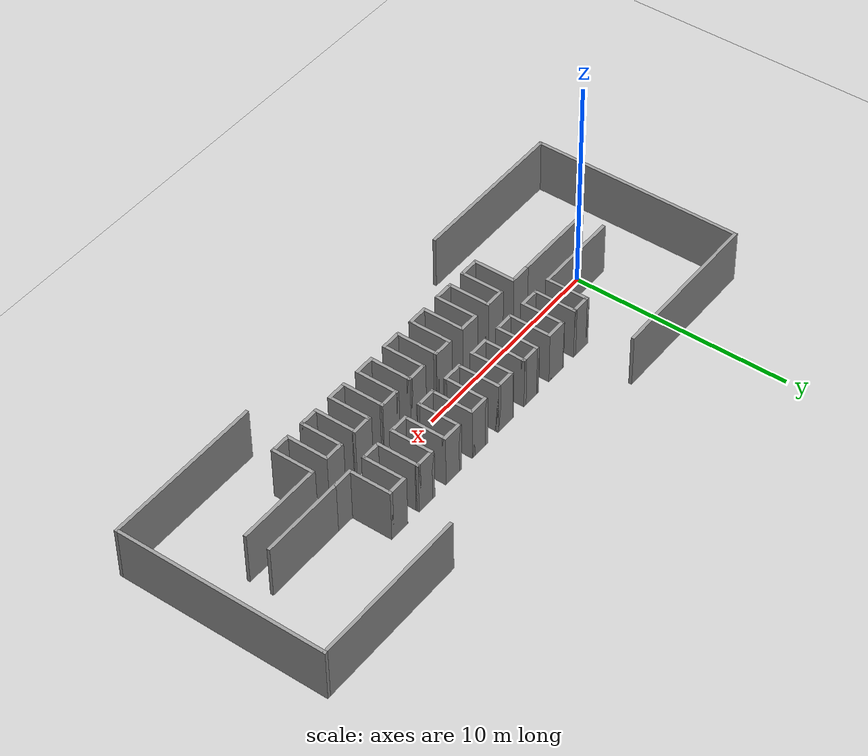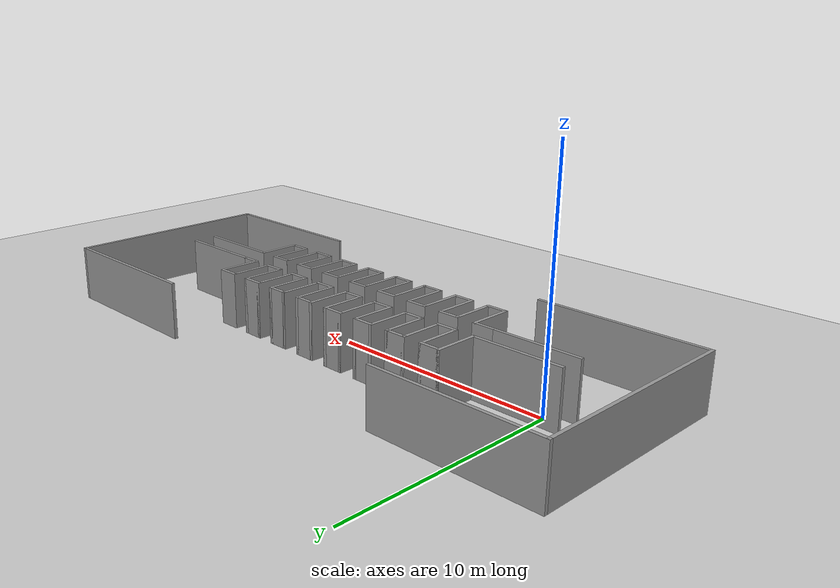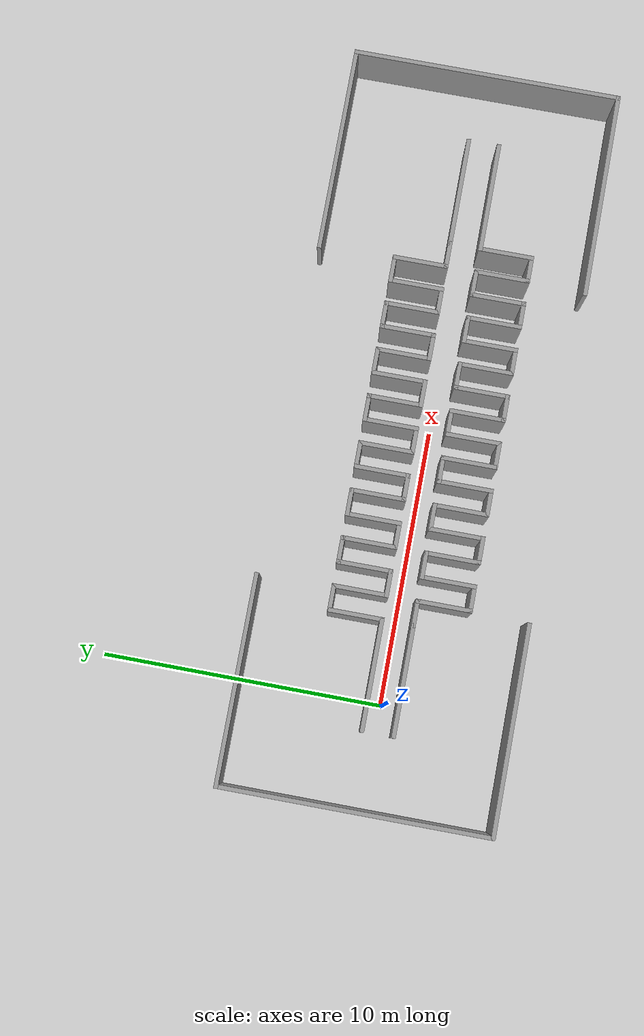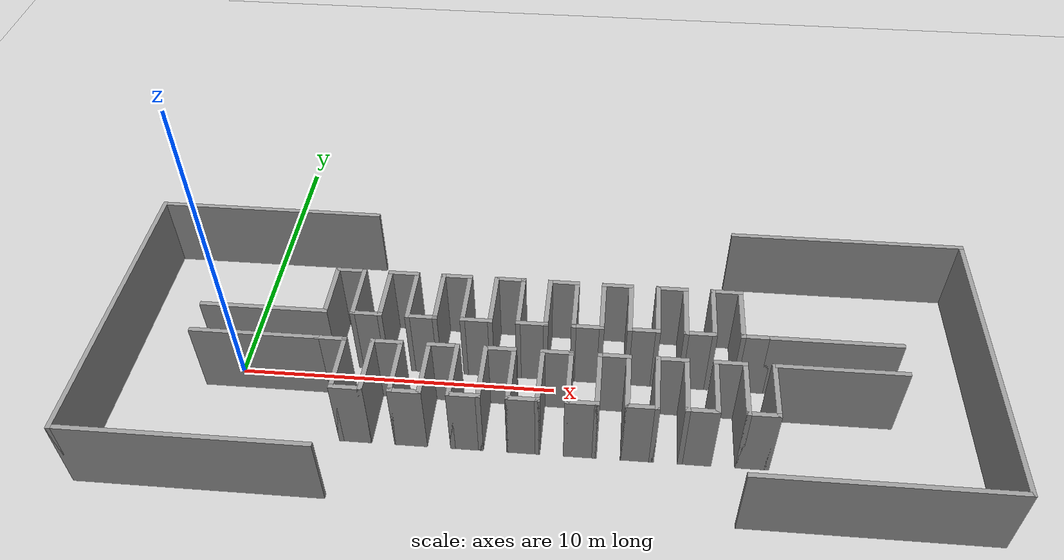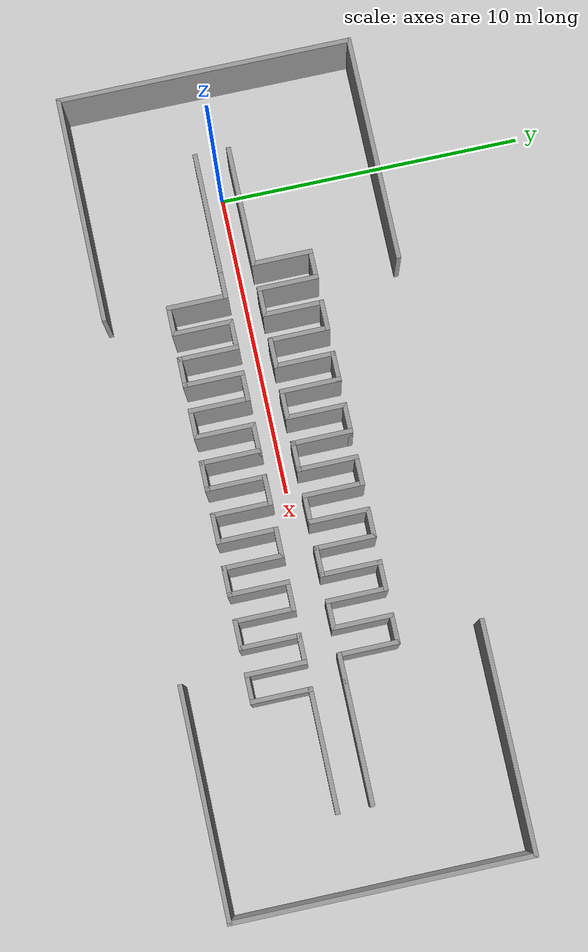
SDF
<sdf version="1.6">
 <world name="default">
  <light name="sun" type="directional">
   <pose>0 0 10 0 -0 0</pose>
   <diffuse>0.8 0.8 0.8 1</diffuse>
   <specular>0.1 0.1 0.1 1</specular>
   <attenuation>
    <range>1000</range>
    <constant>0.9</constant>
    <linear>0.01</linear>
    <quadratic>0.001</quadratic>
   </attenuation>
   <direction>-0.5 0.5 -1</direction>
  </light>
  <model name="ground_plane">
   <static>1</static>
   <link name="link">
    <collision name="collision">
     <geometry><plane><normal>0 0 1</normal><size>100 100</size></plane></geometry>
     <surface><friction><ode><mu>100</mu><mu2>50</mu2></ode></friction></surface>
    </collision>
    <visual name="visual">
     <cast_shadows>0</cast_shadows>
     <geometry><plane><normal>0 0 1</normal><size>100 100</size></plane></geometry>
     <material>
      <script><uri>file://media/materials/scripts/gazebo.material</uri><name>Gazebo/Grey</name></script>
     </material>
    </visual>
   </link>
  </model>
  <gravity>0 0 -9.8</gravity>
  <magnetic_field>6e-06 2.3e-05 -4.2e-05</magnetic_field>
  <atmosphere type="adiabatic"/>
  <physics name="default_physics" default="0" type="ode">
   <max_step_size>0.001</max_step_size>
   <real_time_factor>1</real_time_factor>
   <real_time_update_rate>1000</real_time_update_rate>
  </physics>
  <scene><ambient>0.4 0.4 0.4 1</ambient><background>0.7 0.7 0.7 1</background><shadows>1</shadows></scene>
  <spherical_coordinates>
   <surface_model>EARTH_WGS84</surface_model>
   <latitude_deg>0</latitude_deg>
   <longitude_deg>0</longitude_deg>
   <elevation>0</elevation>
   <heading_deg>0</heading_deg>
  </spherical_coordinates>
  <model name="teeth_1_0">
   <pose>9.60081 0.278234 0 0 -0 0</pose>
   <link name="Wall_112">
    <collision name="Wall_112_Collision">
     <geometry><box><size>9.75 0.15 2.5</size></box></geometry>
     <pose>0 0 1.25 0 -0 0</pose>
    </collision>
    <visual name="Wall_112_Visual">
     <pose>0 0 1.25 0 -0 0</pose>
     <geometry><box><size>9.75 0.15 2.5</size></box></geometry>
     <material>
      <script><uri>file://media/materials/scripts/gazebo.material</uri><name>Gazebo/Grey</name></script>
      <ambient>1 1 1 1</ambient>
     </material>
    </visual>
    <pose>13.3148 0 0 0 0 -1.5708</pose>
   </link>
   <link name="Wall_117">
    <collision name="Wall_117_Collision">
     <geometry><box><size>7.5 0.15 2.5</size></box></geometry>
     <pose>0 0 1.25 0 -0 0</pose>
    </collision>
    <visual name="Wall_117_Visual">
     <pose>0 0 1.25 0 -0 0</pose>
     <geometry><box><size>7.5 0.15 2.5</size></box></geometry>
     <material>
      <script><uri>file://media/materials/scripts/gazebo.material</uri><name>Gazebo/Grey</name></script>
      <ambient>1 1 1 1</ambient>
     </material>
    </visual>
    <pose>9.63981 4.8 0 0 -0 3.14159</pose>
   </link>
   <link name="Wall_120">
    <collision name="Wall_120_Collision">
     <geometry><box><size>7.5 0.15 2.5</size></box></geometry>
     <pose>0 0 1.25 0 -0 0</pose>
    </collision>
    <visual name="Wall_120_Visual">
     <pose>0 0 1.25 0 -0 0</pose>
     <geometry><box><size>7.5 0.15 2.5</size></box></geometry>
     <material>
      <script><uri>file://media/materials/scripts/gazebo.material</uri><name>Gazebo/Grey</name></script>
      <ambient>1 1 1 1</ambient>
     </material>
    </visual>
    <pose>9.63981 -4.8 0 0 -0 3.14159</pose>
   </link>
   <link name="Wall_14">
    <collision name="Wall_14_Collision">
     <geometry><box><size>2 0.15 2.5</size></box></geometry>
     <pose>0 0 1.25 0 -0 0</pose>
    </collision>
    <visual name="Wall_14_Visual">
     <pose>0 0 1.25 0 -0 0</pose>
     <geometry><box><size>2 0.15 2.5</size></box></geometry>
     <material>
      <script><uri>file://media/materials/scripts/gazebo.material</uri><name>Gazebo/Grey</name></script>
      <ambient>1 1 1 1</ambient>
     </material>
    </visual>
    <pose>-5.85552 -1.79091 0 0 0 -1.5708</pose>
   </link>
   <link name="Wall_15">
    <collision name="Wall_15_Collision">
     <geometry><box><size>1 0.15 2.5</size></box></geometry>
     <pose>0 0 1.25 0 -0 0</pose>
    </collision>
    <visual name="Wall_15_Visual">
     <pose>0 0 1.25 0 -0 0</pose>
     <geometry><box><size>1 0.15 2.5</size></box></geometry>
     <material>
      <script><uri>file://media/materials/scripts/gazebo.material</uri><name>Gazebo/Grey</name></script>
      <ambient>1 1 1 1</ambient>
     </material>
    </visual>
    <pose>-5.43052 -2.71591 0 0 -0 0</pose>
   </link>
   <link name="Wall_16">
    <collision name="Wall_16_Collision">
     <geometry><box><size>2 0.15 2.5</size></box></geometry>
     <pose>0 0 1.25 0 -0 0</pose>
    </collision>
    <visual name="Wall_16_Visual">
     <pose>0 0 1.25 0 -0 0</pose>
     <geometry><box><size>2 0.15 2.5</size></box></geometry>
     <material>
      <script><uri>file://media/materials/scripts/gazebo.material</uri><name>Gazebo/Grey</name></script>
      <ambient>1 1 1 1</ambient>
     </material>
    </visual>
    <pose>-5.00552 -1.79091 0 0 -0 1.5708</pose>
   </link>
   <link name="Wall_17">
    <collision name="Wall_17_Collision">
     <geometry><box><size>1 0.15 2.5</size></box></geometry>
     <pose>0 0 1.25 0 -0 0</pose>
    </collision>
    <visual name="Wall_17_Visual">
     <pose>0 0 1.25 0 -0 0</pose>
     <geometry><box><size>1 0.15 2.5</size></box></geometry>
     <material>
      <script><uri>file://media/materials/scripts/gazebo.material</uri><name>Gazebo/Grey</name></script>
      <ambient>1 1 1 1</ambient>
     </material>
    </visual>
    <pose>-4.58052 -0.865907 0 0 -0 0</pose>
   </link>
   <link name="Wall_18">
    <collision name="Wall_18_Collision">
     <geometry><box><size>2 0.15 2.5</size></box></geometry>
     <pose>0 0 1.25 0 -0 0</pose>
    </collision>
    <visual name="Wall_18_Visual">
     <pose>0 0 1.25 0 -0 0</pose>
     <geometry><box><size>2 0.15 2.5</size></box></geometry>
     <material>
      <script><uri>file://media/materials/scripts/gazebo.material</uri><name>Gazebo/Grey</name></script>
      <ambient>1 1 1 1</ambient>
     </material>
    </visual>
    <pose>-4.15552 -1.79091 0 0 0 -1.5708</pose>
   </link>
   <link name="Wall_19">
    <collision name="Wall_19_Collision">
     <geometry><box><size>1 0.15 2.5</size></box></geometry>
     <pose>0 0 1.25 0 -0 0</pose>
    </collision>
    <visual name="Wall_19_Visual">
     <pose>0 0 1.25 0 -0 0</pose>
     <geometry><box><size>1 0.15 2.5</size></box></geometry>
     <material>
      <script><uri>file://media/materials/scripts/gazebo.material</uri><name>Gazebo/Grey</name></script>
      <ambient>1 1 1 1</ambient>
     </material>
    </visual>
    <pose>-3.73052 -2.71591 0 0 -0 0</pose>
   </link>
   <link name="Wall_20">
    <collision name="Wall_20_Collision">
     <geometry><box><size>2 0.15 2.5</size></box></geometry>
     <pose>0 0 1.25 0 -0 0</pose>
    </collision>
    <visual name="Wall_20_Visual">
     <pose>0 0 1.25 0 -0 0</pose>
     <geometry><box><size>2 0.15 2.5</size></box></geometry>
     <material>
      <script><uri>file://media/materials/scripts/gazebo.material</uri><name>Gazebo/Grey</name></script>
      <ambient>1 1 1 1</ambient>
     </material>
    </visual>
    <pose>-3.30552 -1.79091 0 0 -0 1.5708</pose>
   </link>
   <link name="Wall_21">
    <collision name="Wall_21_Collision">
     <geometry><box><size>1 0.15 2.5</size></box></geometry>
     <pose>0 0 1.25 0 -0 0</pose>
    </collision>
    <visual name="Wall_21_Visual">
     <pose>0 0 1.25 0 -0 0</pose>
     <geometry><box><size>1 0.15 2.5</size></box></geometry>
     <material>
      <script><uri>file://media/materials/scripts/gazebo.material</uri><name>Gazebo/Grey</name></script>
      <ambient>1 1 1 1</ambient>
     </material>
    </visual>
    <pose>-2.88052 -0.865907 0 0 -0 0</pose>
   </link>
   <link name="Wall_22">
    <collision name="Wall_22_Collision">
     <geometry><box><size>2 0.15 2.5</size></box></geometry>
     <pose>0 0 1.25 0 -0 0</pose>
    </collision>
    <visual name="Wall_22_Visual">
     <pose>0 0 1.25 0 -0 0</pose>
     <geometry><box><size>2 0.15 2.5</size></box></geometry>
     <material>
      <script><uri>file://media/materials/scripts/gazebo.material</uri><name>Gazebo/Grey</name></script>
      <ambient>1 1 1 1</ambient>
     </material>
    </visual>
    <pose>-2.45552 -1.79091 0 0 0 -1.5708</pose>
   </link>
   <link name="Wall_23">
    <collision name="Wall_23_Collision">
     <geometry><box><size>1 0.15 2.5</size></box></geometry>
     <pose>0 0 1.25 0 -0 0</pose>
    </collision>
    <visual name="Wall_23_Visual">
     <pose>0 0 1.25 0 -0 0</pose>
     <geometry><box><size>1 0.15 2.5</size></box></geometry>
     <material>
      <script><uri>file://media/materials/scripts/gazebo.material</uri><name>Gazebo/Grey</name></script>
      <ambient>1 1 1 1</ambient>
     </material>
    </visual>
    <pose>-2.03052 -2.71591 0 0 -0 0</pose>
   </link>
   <link name="Wall_24">
    <collision name="Wall_24_Collision">
     <geometry><box><size>2 0.15 2.5</size></box></geometry>
     <pose>0 0 1.25 0 -0 0</pose>
    </collision>
    <visual name="Wall_24_Visual">
     <pose>0 0 1.25 0 -0 0</pose>
     <geometry><box><size>2 0.15 2.5</size></box></geometry>
     <material>
      <script><uri>file://media/materials/scripts/gazebo.material</uri><name>Gazebo/Grey</name></script>
      <ambient>1 1 1 1</ambient>
     </material>
    </visual>
    <pose>-1.60552 -1.79091 0 0 -0 1.5708</pose>
   </link>
   <link name="Wall_25">
    <collision name="Wall_25_Collision">
     <geometry><box><size>1 0.15 2.5</size></box></geometry>
     <pose>0 0 1.25 0 -0 0</pose>
    </collision>
    <visual name="Wall_25_Visual">
     <pose>0 0 1.25 0 -0 0</pose>
     <geometry><box><size>1 0.15 2.5</size></box></geometry>
     <material>
      <script><uri>file://media/materials/scripts/gazebo.material</uri><name>Gazebo/Grey</name></script>
      <ambient>1 1 1 1</ambient>
     </material>
    </visual>
    <pose>-1.18052 -0.865907 0 0 -0 0</pose>
   </link>
   <link name="Wall_26">
    <collision name="Wall_26_Collision">
     <geometry><box><size>2 0.15 2.5</size></box></geometry>
     <pose>0 0 1.25 0 -0 0</pose>
    </collision>
    <visual name="Wall_26_Visual">
     <pose>0 0 1.25 0 -0 0</pose>
     <geometry><box><size>2 0.15 2.5</size></box></geometry>
     <material>
      <script><uri>file://media/materials/scripts/gazebo.material</uri><name>Gazebo/Grey</name></script>
      <ambient>1 1 1 1</ambient>
     </material>
    </visual>
    <pose>-0.755524 -1.79091 0 0 0 -1.5708</pose>
   </link>
   <link name="Wall_27">
    <collision name="Wall_27_Collision">
     <geometry><box><size>1 0.15 2.5</size></box></geometry>
     <pose>0 0 1.25 0 -0 0</pose>
    </collision>
    <visual name="Wall_27_Visual">
     <pose>0 0 1.25 0 -0 0</pose>
     <geometry><box><size>1 0.15 2.5</size></box></geometry>
     <material>
      <script><uri>file://media/materials/scripts/gazebo.material</uri><name>Gazebo/Grey</name></script>
      <ambient>1 1 1 1</ambient>
     </material>
    </visual>
    <pose>-0.330524 -2.71591 0 0 -0 0</pose>
   </link>
   <link name="Wall_28">
    <collision name="Wall_28_Collision">
     <geometry><box><size>2 0.15 2.5</size></box></geometry>
     <pose>0 0 1.25 0 -0 0</pose>
    </collision>
    <visual name="Wall_28_Visual">
     <pose>0 0 1.25 0 -0 0</pose>
     <geometry><box><size>2 0.15 2.5</size></box></geometry>
     <material>
      <script><uri>file://media/materials/scripts/gazebo.material</uri><name>Gazebo/Grey</name></script>
      <ambient>1 1 1 1</ambient>
     </material>
    </visual>
    <pose>0.094476 -1.79091 0 0 -0 1.5708</pose>
   </link>
   <link name="Wall_29">
    <collision name="Wall_29_Collision">
     <geometry><box><size>1 0.15 2.5</size></box></geometry>
     <pose>0 0 1.25 0 -0 0</pose>
    </collision>
    <visual name="Wall_29_Visual">
     <pose>0 0 1.25 0 -0 0</pose>
     <geometry><box><size>1 0.15 2.5</size></box></geometry>
     <material>
      <script><uri>file://media/materials/scripts/gazebo.material</uri><name>Gazebo/Grey</name></script>
      <ambient>1 1 1 1</ambient>
     </material>
    </visual>
    <pose>0.519476 -0.865907 0 0 -0 0</pose>
   </link>
   <link name="Wall_30">
    <collision name="Wall_30_Collision">
     <geometry><box><size>2 0.15 2.5</size></box></geometry>
     <pose>0 0 1.25 0 -0 0</pose>
    </collision>
    <visual name="Wall_30_Visual">
     <pose>0 0 1.25 0 -0 0</pose>
     <geometry><box><size>2 0.15 2.5</size></box></geometry>
     <material>
      <script><uri>file://media/materials/scripts/gazebo.material</uri><name>Gazebo/Grey</name></script>
      <ambient>1 1 1 1</ambient>
     </material>
    </visual>
    <pose>0.944476 -1.79091 0 0 0 -1.5708</pose>
   </link>
   <link name="Wall_31">
    <collision name="Wall_31_Collision">
     <geometry><box><size>1 0.15 2.5</size></box></geometry>
     <pose>0 0 1.25 0 -0 0</pose>
    </collision>
    <visual name="Wall_31_Visual">
     <pose>0 0 1.25 0 -0 0</pose>
     <geometry><box><size>1 0.15 2.5</size></box></geometry>
     <material>
      <script><uri>file://media/materials/scripts/gazebo.material</uri><name>Gazebo/Grey</name></script>
      <ambient>1 1 1 1</ambient>
     </material>
    </visual>
    <pose>1.36948 -2.71591 0 0 -0 0</pose>
   </link>
   <link name="Wall_32">
    <collision name="Wall_32_Collision">
     <geometry><box><size>2 0.15 2.5</size></box></geometry>
     <pose>0 0 1.25 0 -0 0</pose>
    </collision>
    <visual name="Wall_32_Visual">
     <pose>0 0 1.25 0 -0 0</pose>
     <geometry><box><size>2 0.15 2.5</size></box></geometry>
     <material>
      <script><uri>file://media/materials/scripts/gazebo.material</uri><name>Gazebo/Grey</name></script>
      <ambient>1 1 1 1</ambient>
     </material>
    </visual>
    <pose>1.79448 -1.79091 0 0 -0 1.5708</pose>
   </link>
   <link name="Wall_33">
    <collision name="Wall_33_Collision">
     <geometry><box><size>1 0.15 2.5</size></box></geometry>
     <pose>0 0 1.25 0 -0 0</pose>
    </collision>
    <visual name="Wall_33_Visual">
     <pose>0 0 1.25 0 -0 0</pose>
     <geometry><box><size>1 0.15 2.5</size></box></geometry>
     <material>
      <script><uri>file://media/materials/scripts/gazebo.material</uri><name>Gazebo/Grey</name></script>
      <ambient>1 1 1 1</ambient>
     </material>
    </visual>
    <pose>2.21948 -0.865907 0 0 -0 0</pose>
   </link>
   <link name="Wall_34">
    <collision name="Wall_34_Collision">
     <geometry><box><size>2 0.15 2.5</size></box></geometry>
     <pose>0 0 1.25 0 -0 0</pose>
    </collision>
    <visual name="Wall_34_Visual">
     <pose>0 0 1.25 0 -0 0</pose>
     <geometry><box><size>2 0.15 2.5</size></box></geometry>
     <material>
      <script><uri>file://media/materials/scripts/gazebo.material</uri><name>Gazebo/Grey</name></script>
      <ambient>1 1 1 1</ambient>
     </material>
    </visual>
    <pose>2.64448 -1.79091 0 0 0 -1.5708</pose>
   </link>
   <link name="Wall_35">
    <collision name="Wall_35_Collision">
     <geometry><box><size>1 0.15 2.5</size></box></geometry>
     <pose>0 0 1.25 0 -0 0</pose>
    </collision>
    <visual name="Wall_35_Visual">
     <pose>0 0 1.25 0 -0 0</pose>
     <geometry><box><size>1 0.15 2.5</size></box></geometry>
     <material>
      <script><uri>file://media/materials/scripts/gazebo.material</uri><name>Gazebo/Grey</name></script>
      <ambient>1 1 1 1</ambient>
     </material>
    </visual>
    <pose>3.06948 -2.71591 0 0 -0 0</pose>
   </link>
   <link name="Wall_36">
    <collision name="Wall_36_Collision">
     <geometry><box><size>2 0.15 2.5</size></box></geometry>
     <pose>0 0 1.25 0 -0 0</pose>
    </collision>
    <visual name="Wall_36_Visual">
     <pose>0 0 1.25 0 -0 0</pose>
     <geometry><box><size>2 0.15 2.5</size></box></geometry>
     <material>
      <script><uri>file://media/materials/scripts/gazebo.material</uri><name>Gazebo/Grey</name></script>
      <ambient>1 1 1 1</ambient>
     </material>
    </visual>
    <pose>3.49448 -1.79091 0 0 -0 1.5708</pose>
   </link>
   <link name="Wall_38">
    <collision name="Wall_38_Collision">
     <geometry><box><size>1 0.15 2.5</size></box></geometry>
     <pose>0 0 1.25 0 -0 0</pose>
    </collision>
    <visual name="Wall_38_Visual">
     <pose>0 0 1.25 0 -0 0</pose>
     <geometry><box><size>1 0.15 2.5</size></box></geometry>
     <material>
      <script><uri>file://media/materials/scripts/gazebo.material</uri><name>Gazebo/Grey</name></script>
      <ambient>1 1 1 1</ambient>
     </material>
    </visual>
    <pose>3.91948 -0.865907 0 0 -0 0</pose>
   </link>
   <link name="Wall_39">
    <collision name="Wall_39_Collision">
     <geometry><box><size>2 0.15 2.5</size></box></geometry>
     <pose>0 0 1.25 0 -0 0</pose>
    </collision>
    <visual name="Wall_39_Visual">
     <pose>0 0 1.25 0 -0 0</pose>
     <geometry><box><size>2 0.15 2.5</size></box></geometry>
     <material>
      <script><uri>file://media/materials/scripts/gazebo.material</uri><name>Gazebo/Grey</name></script>
      <ambient>1 1 1 1</ambient>
     </material>
    </visual>
    <pose>4.34448 -1.79091 0 0 0 -1.5708</pose>
   </link>
   <link name="Wall_40">
    <collision name="Wall_40_Collision">
     <geometry><box><size>1 0.15 2.5</size></box></geometry>
     <pose>0 0 1.25 0 -0 0</pose>
    </collision>
    <visual name="Wall_40_Visual">
     <pose>0 0 1.25 0 -0 0</pose>
     <geometry><box><size>1 0.15 2.5</size></box></geometry>
     <material>
      <script><uri>file://media/materials/scripts/gazebo.material</uri><name>Gazebo/Grey</name></script>
      <ambient>1 1 1 1</ambient>
     </material>
    </visual>
    <pose>4.76948 -2.71591 0 0 -0 0</pose>
   </link>
   <link name="Wall_41">
    <collision name="Wall_41_Collision">
     <geometry><box><size>2 0.15 2.5</size></box></geometry>
     <pose>0 0 1.25 0 -0 0</pose>
    </collision>
    <visual name="Wall_41_Visual">
     <pose>0 0 1.25 0 -0 0</pose>
     <geometry><box><size>2 0.15 2.5</size></box></geometry>
     <material>
      <script><uri>file://media/materials/scripts/gazebo.material</uri><name>Gazebo/Grey</name></script>
      <ambient>1 1 1 1</ambient>
     </material>
    </visual>
    <pose>5.19448 -1.79091 0 0 -0 1.5708</pose>
   </link>
   <link name="Wall_42">
    <collision name="Wall_42_Collision">
     <geometry><box><size>1 0.15 2.5</size></box></geometry>
     <pose>0 0 1.25 0 -0 0</pose>
    </collision>
    <visual name="Wall_42_Visual">
     <pose>0 0 1.25 0 -0 0</pose>
     <geometry><box><size>1 0.15 2.5</size></box></geometry>
     <material>
      <script><uri>file://media/materials/scripts/gazebo.material</uri><name>Gazebo/Grey</name></script>
      <ambient>1 1 1 1</ambient>
     </material>
    </visual>
    <pose>5.61948 -0.865907 0 0 -0 0</pose>
   </link>
   <link name="Wall_43">
    <collision name="Wall_43_Collision">
     <geometry><box><size>2 0.15 2.5</size></box></geometry>
     <pose>0 0 1.25 0 -0 0</pose>
    </collision>
    <visual name="Wall_43_Visual">
     <pose>0 0 1.25 0 -0 0</pose>
     <geometry><box><size>2 0.15 2.5</size></box></geometry>
     <material>
      <script><uri>file://media/materials/scripts/gazebo.material</uri><name>Gazebo/Grey</name></script>
      <ambient>1 1 1 1</ambient>
     </material>
    </visual>
    <pose>6.04448 -1.79091 0 0 0 -1.5708</pose>
   </link>
   <link name="Wall_44">
    <collision name="Wall_44_Collision">
     <geometry><box><size>1 0.15 2.5</size></box></geometry>
     <pose>0 0 1.25 0 -0 0</pose>
    </collision>
    <visual name="Wall_44_Visual">
     <pose>0 0 1.25 0 -0 0</pose>
     <geometry><box><size>1 0.15 2.5</size></box></geometry>
     <material>
      <script><uri>file://media/materials/scripts/gazebo.material</uri><name>Gazebo/Grey</name></script>
      <ambient>1 1 1 1</ambient>
     </material>
    </visual>
    <pose>6.46948 -2.71591 0 0 -0 0</pose>
   </link>
   <link name="Wall_45">
    <collision name="Wall_45_Collision">
     <geometry><box><size>2 0.15 2.5</size></box></geometry>
     <pose>0 0 1.25 0 -0 0</pose>
    </collision>
    <visual name="Wall_45_Visual">
     <pose>0 0 1.25 0 -0 0</pose>
     <geometry><box><size>2 0.15 2.5</size></box></geometry>
     <material>
      <script><uri>file://media/materials/scripts/gazebo.material</uri><name>Gazebo/Grey</name></script>
      <ambient>1 1 1 1</ambient>
     </material>
    </visual>
    <pose>6.89448 -1.79091 0 0 -0 1.5708</pose>
   </link>
   <link name="Wall_47">
    <collision name="Wall_47_Collision">
     <geometry><box><size>2 0.15 2.5</size></box></geometry>
     <pose>0 0 1.25 0 -0 0</pose>
    </collision>
    <visual name="Wall_47_Visual">
     <pose>0 0 1.25 0 -0 0</pose>
     <geometry><box><size>2 0.15 2.5</size></box></geometry>
     <material>
      <script><uri>file://media/materials/scripts/gazebo.material</uri><name>Gazebo/Grey</name></script>
      <ambient>1 1 1 1</ambient>
     </material>
    </visual>
    <pose>-6.70552 1.15909 0 0 -0 1.5708</pose>
   </link>
   <link name="Wall_48">
    <collision name="Wall_48_Collision">
     <geometry><box><size>1 0.15 2.5</size></box></geometry>
     <pose>0 0 1.25 0 -0 0</pose>
    </collision>
    <visual name="Wall_48_Visual">
     <pose>0 0 1.25 0 -0 0</pose>
     <geometry><box><size>1 0.15 2.5</size></box></geometry>
     <material>
      <script><uri>file://media/materials/scripts/gazebo.material</uri><name>Gazebo/Grey</name></script>
      <ambient>1 1 1 1</ambient>
     </material>
    </visual>
    <pose>-6.28052 2.08409 0 0 -0 0</pose>
   </link>
   <link name="Wall_49">
    <collision name="Wall_49_Collision">
     <geometry><box><size>2 0.15 2.5</size></box></geometry>
     <pose>0 0 1.25 0 -0 0</pose>
    </collision>
    <visual name="Wall_49_Visual">
     <pose>0 0 1.25 0 -0 0</pose>
     <geometry><box><size>2 0.15 2.5</size></box></geometry>
     <material>
      <script><uri>file://media/materials/scripts/gazebo.material</uri><name>Gazebo/Grey</name></script>
      <ambient>1 1 1 1</ambient>
     </material>
    </visual>
    <pose>-5.85552 1.15909 0 0 0 -1.5708</pose>
   </link>
   <link name="Wall_50">
    <collision name="Wall_50_Collision">
     <geometry><box><size>1 0.15 2.5</size></box></geometry>
     <pose>0 0 1.25 0 -0 0</pose>
    </collision>
    <visual name="Wall_50_Visual">
     <pose>0 0 1.25 0 -0 0</pose>
     <geometry><box><size>1 0.15 2.5</size></box></geometry>
     <material>
      <script><uri>file://media/materials/scripts/gazebo.material</uri><name>Gazebo/Grey</name></script>
      <ambient>1 1 1 1</ambient>
     </material>
    </visual>
    <pose>-5.43052 0.234093 0 0 -0 0</pose>
   </link>
   <link name="Wall_51">
    <collision name="Wall_51_Collision">
     <geometry><box><size>2 0.15 2.5</size></box></geometry>
     <pose>0 0 1.25 0 -0 0</pose>
    </collision>
    <visual name="Wall_51_Visual">
     <pose>0 0 1.25 0 -0 0</pose>
     <geometry><box><size>2 0.15 2.5</size></box></geometry>
     <material>
      <script><uri>file://media/materials/scripts/gazebo.material</uri><name>Gazebo/Grey</name></script>
      <ambient>1 1 1 1</ambient>
     </material>
    </visual>
    <pose>-5.00552 1.15909 0 0 -0 1.5708</pose>
   </link>
   <link name="Wall_52">
    <collision name="Wall_52_Collision">
     <geometry><box><size>1 0.15 2.5</size></box></geometry>
     <pose>0 0 1.25 0 -0 0</pose>
    </collision>
    <visual name="Wall_52_Visual">
     <pose>0 0 1.25 0 -0 0</pose>
     <geometry><box><size>1 0.15 2.5</size></box></geometry>
     <material>
      <script><uri>file://media/materials/scripts/gazebo.material</uri><name>Gazebo/Grey</name></script>
      <ambient>1 1 1 1</ambient>
     </material>
    </visual>
    <pose>-4.58052 2.08409 0 0 -0 0</pose>
   </link>
   <link name="Wall_53">
    <collision name="Wall_53_Collision">
     <geometry><box><size>2 0.15 2.5</size></box></geometry>
     <pose>0 0 1.25 0 -0 0</pose>
    </collision>
    <visual name="Wall_53_Visual">
     <pose>0 0 1.25 0 -0 0</pose>
     <geometry><box><size>2 0.15 2.5</size></box></geometry>
     <material>
      <script><uri>file://media/materials/scripts/gazebo.material</uri><name>Gazebo/Grey</name></script>
      <ambient>1 1 1 1</ambient>
     </material>
    </visual>
    <pose>-4.15552 1.15909 0 0 0 -1.5708</pose>
   </link>
   <link name="Wall_54">
    <collision name="Wall_54_Collision">
     <geometry><box><size>1 0.15 2.5</size></box></geometry>
     <pose>0 0 1.25 0 -0 0</pose>
    </collision>
    <visual name="Wall_54_Visual">
     <pose>0 0 1.25 0 -0 0</pose>
     <geometry><box><size>1 0.15 2.5</size></box></geometry>
     <material>
      <script><uri>file://media/materials/scripts/gazebo.material</uri><name>Gazebo/Grey</name></script>
      <ambient>1 1 1 1</ambient>
     </material>
    </visual>
    <pose>-3.73052 0.234093 0 0 -0 0</pose>
   </link>
   <link name="Wall_55">
    <collision name="Wall_55_Collision">
     <geometry><box><size>2 0.15 2.5</size></box></geometry>
     <pose>0 0 1.25 0 -0 0</pose>
    </collision>
    <visual name="Wall_55_Visual">
     <pose>0 0 1.25 0 -0 0</pose>
     <geometry><box><size>2 0.15 2.5</size></box></geometry>
     <material>
      <script><uri>file://media/materials/scripts/gazebo.material</uri><name>Gazebo/Grey</name></script>
      <ambient>1 1 1 1</ambient>
     </material>
    </visual>
    <pose>-3.30552 1.15909 0 0 -0 1.5708</pose>
   </link>
   <link name="Wall_56">
    <collision name="Wall_56_Collision">
     <geometry><box><size>1 0.15 2.5</size></box></geometry>
     <pose>0 0 1.25 0 -0 0</pose>
    </collision>
    <visual name="Wall_56_Visual">
     <pose>0 0 1.25 0 -0 0</pose>
     <geometry><box><size>1 0.15 2.5</size></box></geometry>
     <material>
      <script><uri>file://media/materials/scripts/gazebo.material</uri><name>Gazebo/Grey</name></script>
      <ambient>1 1 1 1</ambient>
     </material>
    </visual>
    <pose>-2.88052 2.08409 0 0 -0 0</pose>
   </link>
   <link name="Wall_57">
    <collision name="Wall_57_Collision">
     <geometry><box><size>2 0.15 2.5</size></box></geometry>
     <pose>0 0 1.25 0 -0 0</pose>
    </collision>
    <visual name="Wall_57_Visual">
     <pose>0 0 1.25 0 -0 0</pose>
     <geometry><box><size>2 0.15 2.5</size></box></geometry>
     <material>
      <script><uri>file://media/materials/scripts/gazebo.material</uri><name>Gazebo/Grey</name></script>
      <ambient>1 1 1 1</ambient>
     </material>
    </visual>
    <pose>-2.45552 1.15909 0 0 0 -1.5708</pose>
   </link>
   <link name="Wall_58">
    <collision name="Wall_58_Collision">
     <geometry><box><size>1 0.15 2.5</size></box></geometry>
     <pose>0 0 1.25 0 -0 0</pose>
    </collision>
    <visual name="Wall_58_Visual">
     <pose>0 0 1.25 0 -0 0</pose>
     <geometry><box><size>1 0.15 2.5</size></box></geometry>
     <material>
      <script><uri>file://media/materials/scripts/gazebo.material</uri><name>Gazebo/Grey</name></script>
      <ambient>1 1 1 1</ambient>
     </material>
    </visual>
    <pose>-2.03052 0.234093 0 0 -0 0</pose>
   </link>
   <link name="Wall_59">
    <collision name="Wall_59_Collision">
     <geometry><box><size>2 0.15 2.5</size></box></geometry>
     <pose>0 0 1.25 0 -0 0</pose>
    </collision>
    <visual name="Wall_59_Visual">
     <pose>0 0 1.25 0 -0 0</pose>
     <geometry><box><size>2 0.15 2.5</size></box></geometry>
     <material>
      <script><uri>file://media/materials/scripts/gazebo.material</uri><name>Gazebo/Grey</name></script>
      <ambient>1 1 1 1</ambient>
     </material>
    </visual>
    <pose>-1.60552 1.15909 0 0 -0 1.5708</pose>
   </link>
   <link name="Wall_60">
    <collision name="Wall_60_Collision">
     <geometry><box><size>1 0.15 2.5</size></box></geometry>
     <pose>0 0 1.25 0 -0 0</pose>
    </collision>
    <visual name="Wall_60_Visual">
     <pose>0 0 1.25 0 -0 0</pose>
     <geometry><box><size>1 0.15 2.5</size></box></geometry>
     <material>
      <script><uri>file://media/materials/scripts/gazebo.material</uri><name>Gazebo/Grey</name></script>
      <ambient>1 1 1 1</ambient>
     </material>
    </visual>
    <pose>-1.18052 2.08409 0 0 -0 0</pose>
   </link>
   <link name="Wall_61">
    <collision name="Wall_61_Collision">
     <geometry><box><size>2 0.15 2.5</size></box></geometry>
     <pose>0 0 1.25 0 -0 0</pose>
    </collision>
    <visual name="Wall_61_Visual">
     <pose>0 0 1.25 0 -0 0</pose>
     <geometry><box><size>2 0.15 2.5</size></box></geometry>
     <material>
      <script><uri>file://media/materials/scripts/gazebo.material</uri><name>Gazebo/Grey</name></script>
      <ambient>1 1 1 1</ambient>
     </material>
    </visual>
    <pose>-0.755524 1.15909 0 0 0 -1.5708</pose>
   </link>
   <link name="Wall_62">
    <collision name="Wall_62_Collision">
     <geometry><box><size>1 0.15 2.5</size></box></geometry>
     <pose>0 0 1.25 0 -0 0</pose>
    </collision>
    <visual name="Wall_62_Visual">
     <pose>0 0 1.25 0 -0 0</pose>
     <geometry><box><size>1 0.15 2.5</size></box></geometry>
     <material>
      <script><uri>file://media/materials/scripts/gazebo.material</uri><name>Gazebo/Grey</name></script>
      <ambient>1 1 1 1</ambient>
     </material>
    </visual>
    <pose>-0.330524 0.234093 0 0 -0 0</pose>
   </link>
   <link name="Wall_63">
    <collision name="Wall_63_Collision">
     <geometry><box><size>2 0.15 2.5</size></box></geometry>
     <pose>0 0 1.25 0 -0 0</pose>
    </collision>
    <visual name="Wall_63_Visual">
     <pose>0 0 1.25 0 -0 0</pose>
     <geometry><box><size>2 0.15 2.5</size></box></geometry>
     <material>
      <script><uri>file://media/materials/scripts/gazebo.material</uri><name>Gazebo/Grey</name></script>
      <ambient>1 1 1 1</ambient>
     </material>
    </visual>
    <pose>0.094476 1.15909 0 0 -0 1.5708</pose>
   </link>
   <link name="Wall_64">
    <collision name="Wall_64_Collision">
     <geometry><box><size>1 0.15 2.5</size></box></geometry>
     <pose>0 0 1.25 0 -0 0</pose>
    </collision>
    <visual name="Wall_64_Visual">
     <pose>0 0 1.25 0 -0 0</pose>
     <geometry><box><size>1 0.15 2.5</size></box></geometry>
     <material>
      <script><uri>file://media/materials/scripts/gazebo.material</uri><name>Gazebo/Grey</name></script>
      <ambient>1 1 1 1</ambient>
     </material>
    </visual>
    <pose>0.519476 2.08409 0 0 -0 0</pose>
   </link>
   <link name="Wall_65">
    <collision name="Wall_65_Collision">
     <geometry><box><size>2 0.15 2.5</size></box></geometry>
     <pose>0 0 1.25 0 -0 0</pose>
    </collision>
    <visual name="Wall_65_Visual">
     <pose>0 0 1.25 0 -0 0</pose>
     <geometry><box><size>2 0.15 2.5</size></box></geometry>
     <material>
      <script><uri>file://media/materials/scripts/gazebo.material</uri><name>Gazebo/Grey</name></script>
      <ambient>1 1 1 1</ambient>
     </material>
    </visual>
    <pose>0.944476 1.15909 0 0 0 -1.5708</pose>
   </link>
   <link name="Wall_66">
    <collision name="Wall_66_Collision">
     <geometry><box><size>1 0.15 2.5</size></box></geometry>
     <pose>0 0 1.25 0 -0 0</pose>
    </collision>
    <visual name="Wall_66_Visual">
     <pose>0 0 1.25 0 -0 0</pose>
     <geometry><box><size>1 0.15 2.5</size></box></geometry>
     <material>
      <script><uri>file://media/materials/scripts/gazebo.material</uri><name>Gazebo/Grey</name></script>
      <ambient>1 1 1 1</ambient>
     </material>
    </visual>
    <pose>1.36948 0.234093 0 0 -0 0</pose>
   </link>
   <link name="Wall_68">
    <collision name="Wall_68_Collision">
     <geometry><box><size>2 0.15 2.5</size></box></geometry>
     <pose>0 0 1.25 0 -0 0</pose>
    </collision>
    <visual name="Wall_68_Visual">
     <pose>0 0 1.25 0 -0 0</pose>
     <geometry><box><size>2 0.15 2.5</size></box></geometry>
     <material>
      <script><uri>file://media/materials/scripts/gazebo.material</uri><name>Gazebo/Grey</name></script>
      <ambient>1 1 1 1</ambient>
     </material>
    </visual>
    <pose>1.79448 1.15909 0 0 -0 1.5708</pose>
   </link>
   <link name="Wall_69">
    <collision name="Wall_69_Collision">
     <geometry><box><size>1 0.15 2.5</size></box></geometry>
     <pose>0 0 1.25 0 -0 0</pose>
    </collision>
    <visual name="Wall_69_Visual">
     <pose>0 0 1.25 0 -0 0</pose>
     <geometry><box><size>1 0.15 2.5</size></box></geometry>
     <material>
      <script><uri>file://media/materials/scripts/gazebo.material</uri><name>Gazebo/Grey</name></script>
      <ambient>1 1 1 1</ambient>
     </material>
    </visual>
    <pose>2.21948 2.08409 0 0 -0 0</pose>
   </link>
   <link name="Wall_70">
    <collision name="Wall_70_Collision">
     <geometry><box><size>2 0.15 2.5</size></box></geometry>
     <pose>0 0 1.25 0 -0 0</pose>
    </collision>
    <visual name="Wall_70_Visual">
     <pose>0 0 1.25 0 -0 0</pose>
     <geometry><box><size>2 0.15 2.5</size></box></geometry>
     <material>
      <script><uri>file://media/materials/scripts/gazebo.material</uri><name>Gazebo/Grey</name></script>
      <ambient>1 1 1 1</ambient>
     </material>
    </visual>
    <pose>2.64448 1.15909 0 0 0 -1.5708</pose>
   </link>
   <link name="Wall_71">
    <collision name="Wall_71_Collision">
     <geometry><box><size>1 0.15 2.5</size></box></geometry>
     <pose>0 0 1.25 0 -0 0</pose>
    </collision>
    <visual name="Wall_71_Visual">
     <pose>0 0 1.25 0 -0 0</pose>
     <geometry><box><size>1 0.15 2.5</size></box></geometry>
     <material>
      <script><uri>file://media/materials/scripts/gazebo.material</uri><name>Gazebo/Grey</name></script>
      <ambient>1 1 1 1</ambient>
     </material>
    </visual>
    <pose>3.06948 0.234093 0 0 -0 0</pose>
   </link>
   <link name="Wall_72">
    <collision name="Wall_72_Collision">
     <geometry><box><size>2 0.15 2.5</size></box></geometry>
     <pose>0 0 1.25 0 -0 0</pose>
    </collision>
    <visual name="Wall_72_Visual">
     <pose>0 0 1.25 0 -0 0</pose>
     <geometry><box><size>2 0.15 2.5</size></box></geometry>
     <material>
      <script><uri>file://media/materials/scripts/gazebo.material</uri><name>Gazebo/Grey</name></script>
      <ambient>1 1 1 1</ambient>
     </material>
    </visual>
    <pose>3.49448 1.15909 0 0 -0 1.5708</pose>
   </link>
   <link name="Wall_73">
    <collision name="Wall_73_Collision">
     <geometry><box><size>1 0.15 2.5</size></box></geometry>
     <pose>0 0 1.25 0 -0 0</pose>
    </collision>
    <visual name="Wall_73_Visual">
     <pose>0 0 1.25 0 -0 0</pose>
     <geometry><box><size>1 0.15 2.5</size></box></geometry>
     <material>
      <script><uri>file://media/materials/scripts/gazebo.material</uri><name>Gazebo/Grey</name></script>
      <ambient>1 1 1 1</ambient>
     </material>
    </visual>
    <pose>3.91948 2.08409 0 0 -0 0</pose>
   </link>
   <link name="Wall_74">
    <collision name="Wall_74_Collision">
     <geometry><box><size>2 0.15 2.5</size></box></geometry>
     <pose>0 0 1.25 0 -0 0</pose>
    </collision>
    <visual name="Wall_74_Visual">
     <pose>0 0 1.25 0 -0 0</pose>
     <geometry><box><size>2 0.15 2.5</size></box></geometry>
     <material>
      <script><uri>file://media/materials/scripts/gazebo.material</uri><name>Gazebo/Grey</name></script>
      <ambient>1 1 1 1</ambient>
     </material>
    </visual>
    <pose>4.34448 1.15909 0 0 0 -1.5708</pose>
   </link>
   <link name="Wall_75">
    <collision name="Wall_75_Collision">
     <geometry><box><size>1 0.15 2.5</size></box></geometry>
     <pose>0 0 1.25 0 -0 0</pose>
    </collision>
    <visual name="Wall_75_Visual">
     <pose>0 0 1.25 0 -0 0</pose>
     <geometry><box><size>1 0.15 2.5</size></box></geometry>
     <material>
      <script><uri>file://media/materials/scripts/gazebo.material</uri><name>Gazebo/Grey</name></script>
      <ambient>1 1 1 1</ambient>
     </material>
    </visual>
    <pose>4.76948 0.234093 0 0 -0 0</pose>
   </link>
   <link name="Wall_76">
    <collision name="Wall_76_Collision">
     <geometry><box><size>2 0.15 2.5</size></box></geometry>
     <pose>0 0 1.25 0 -0 0</pose>
    </collision>
    <visual name="Wall_76_Visual">
     <pose>0 0 1.25 0 -0 0</pose>
     <geometry><box><size>2 0.15 2.5</size></box></geometry>
     <material>
      <script><uri>file://media/materials/scripts/gazebo.material</uri><name>Gazebo/Grey</name></script>
      <ambient>1 1 1 1</ambient>
     </material>
    </visual>
    <pose>5.19448 1.15909 0 0 -0 1.5708</pose>
   </link>
   <link name="Wall_77">
    <collision name="Wall_77_Collision">
     <geometry><box><size>1 0.15 2.5</size></box></geometry>
     <pose>0 0 1.25 0 -0 0</pose>
    </collision>
    <visual name="Wall_77_Visual">
     <pose>0 0 1.25 0 -0 0</pose>
     <geometry><box><size>1 0.15 2.5</size></box></geometry>
     <material>
      <script><uri>file://media/materials/scripts/gazebo.material</uri><name>Gazebo/Grey</name></script>
      <ambient>1 1 1 1</ambient>
     </material>
    </visual>
    <pose>5.61948 2.08409 0 0 -0 0</pose>
   </link>
   <link name="Wall_78">
    <collision name="Wall_78_Collision">
     <geometry><box><size>2 0.15 2.5</size></box></geometry>
     <pose>0 0 1.25 0 -0 0</pose>
    </collision>
    <visual name="Wall_78_Visual">
     <pose>0 0 1.25 0 -0 0</pose>
     <geometry><box><size>2 0.15 2.5</size></box></geometry>
     <material>
      <script><uri>file://media/materials/scripts/gazebo.material</uri><name>Gazebo/Grey</name></script>
      <ambient>1 1 1 1</ambient>
     </material>
    </visual>
    <pose>6.04448 1.15909 0 0 0 -1.5708</pose>
   </link>
   <link name="Wall_79">
    <collision name="Wall_79_Collision">
     <geometry><box><size>1 0.15 2.5</size></box></geometry>
     <pose>0 0 1.25 0 -0 0</pose>
    </collision>
    <visual name="Wall_79_Visual">
     <pose>0 0 1.25 0 -0 0</pose>
     <geometry><box><size>1 0.15 2.5</size></box></geometry>
     <material>
      <script><uri>file://media/materials/scripts/gazebo.material</uri><name>Gazebo/Grey</name></script>
      <ambient>1 1 1 1</ambient>
     </material>
    </visual>
    <pose>6.46948 0.234093 0 0 -0 0</pose>
   </link>
   <link name="Wall_83">
    <collision name="Wall_83_Collision">
     <geometry><box><size>4 0.15 2.5</size></box></geometry>
     <pose>0 0 1.25 0 -0 0</pose>
    </collision>
    <visual name="Wall_83_Visual">
     <pose>0 0 1.25 0 -0 0</pose>
     <geometry><box><size>4 0.15 2.5</size></box></geometry>
     <material>
      <script><uri>file://media/materials/scripts/gazebo.material</uri><name>Gazebo/Grey</name></script>
      <ambient>1 1 1 1</ambient>
     </material>
    </visual>
    <pose>8.81948 0.234093 0 0 -0 0</pose>
   </link>
   <link name="Wall_87">
    <collision name="Wall_87_Collision">
     <geometry><box><size>4 0.15 2.5</size></box></geometry>
     <pose>0 0 1.25 0 -0 0</pose>
    </collision>
    <visual name="Wall_87_Visual">
     <pose>0 0 1.25 0 -0 0</pose>
     <geometry><box><size>4 0.15 2.5</size></box></geometry>
     <material>
      <script><uri>file://media/materials/scripts/gazebo.material</uri><name>Gazebo/Grey</name></script>
      <ambient>1 1 1 1</ambient>
     </material>
    </visual>
    <pose>8.81948 -0.865907 0 0 -0 0</pose>
   </link>
   <link name="Wall_9">
    <collision name="Wall_9_Collision">
     <geometry><box><size>1 0.15 2.5</size></box></geometry>
     <pose>0 0 1.25 0 -0 0</pose>
    </collision>
    <visual name="Wall_9_Visual">
     <pose>0 0 1.25 0 -0 0</pose>
     <geometry><box><size>1 0.15 2.5</size></box></geometry>
     <material>
      <script><uri>file://media/materials/scripts/gazebo.material</uri><name>Gazebo/Grey</name></script>
      <ambient>1 1 1 1</ambient>
     </material>
    </visual>
    <pose>-6.28052 -0.865907 0 0 -0 0</pose>
   </link>
   <link name="Wall_91">
    <collision name="Wall_91_Collision">
     <geometry><box><size>4 0.15 2.5</size></box></geometry>
     <pose>0 0 1.25 0 -0 0</pose>
    </collision>
    <visual name="Wall_91_Visual">
     <pose>0 0 1.25 0 -0 0</pose>
     <geometry><box><size>4 0.15 2.5</size></box></geometry>
     <material>
      <script><uri>file://media/materials/scripts/gazebo.material</uri><name>Gazebo/Grey</name></script>
      <ambient>1 1 1 1</ambient>
     </material>
    </visual>
    <pose>-8.63052 0.234093 0 0 -0 3.14159</pose>
   </link>
   <link name="Wall_95">
    <collision name="Wall_95_Collision">
     <geometry><box><size>4 0.15 2.5</size></box></geometry>
     <pose>0 0 1.25 0 -0 0</pose>
    </collision>
    <visual name="Wall_95_Visual">
     <pose>0 0 1.25 0 -0 0</pose>
     <geometry><box><size>4 0.15 2.5</size></box></geometry>
     <material>
      <script><uri>file://media/materials/scripts/gazebo.material</uri><name>Gazebo/Grey</name></script>
      <ambient>1 1 1 1</ambient>
     </material>
    </visual>
    <pose>-8.63052 -0.865907 0 0 -0 3.14159</pose>
   </link>
   <link name="Wall_97">
    <collision name="Wall_97_Collision">
     <geometry><box><size>7.5 0.15 2.5</size></box></geometry>
     <pose>0 0 1.25 0 -0 0</pose>
    </collision>
    <visual name="Wall_97_Visual">
     <pose>0 0 1.25 0 -0 0</pose>
     <geometry><box><size>7.5 0.15 2.5</size></box></geometry>
     <material>
      <script><uri>file://media/materials/scripts/gazebo.material</uri><name>Gazebo/Grey</name></script>
      <ambient>1 1 1 1</ambient>
     </material>
    </visual>
    <pose>-9.63981 4.8 0 0 -0 3.14159</pose>
   </link>
   <link name="Wall_98">
    <collision name="Wall_98_Collision">
     <geometry><box><size>9.75 0.15 2.5</size></box></geometry>
     <pose>0 0 1.25 0 -0 0</pose>
    </collision>
    <visual name="Wall_98_Visual">
     <pose>0 0 1.25 0 -0 0</pose>
     <geometry><box><size>9.75 0.15 2.5</size></box></geometry>
     <material>
      <script><uri>file://media/materials/scripts/gazebo.material</uri><name>Gazebo/Grey</name></script>
      <ambient>1 1 1 1</ambient>
     </material>
    </visual>
    <pose>-13.3148 0 0 0 0 -1.5708</pose>
   </link>
   <link name="Wall_99">
    <collision name="Wall_99_Collision">
     <geometry><box><size>7.5 0.15 2.5</size></box></geometry>
     <pose>0 0 1.25 0 -0 0</pose>
    </collision>
    <visual name="Wall_99_Visual">
     <pose>0 0 1.25 0 -0 0</pose>
     <geometry><box><size>7.5 0.15 2.5</size></box></geometry>
     <material>
      <script><uri>file://media/materials/scripts/gazebo.material</uri><name>Gazebo/Grey</name></script>
      <ambient>1 1 1 1</ambient>
     </material>
    </visual>
    <pose>-9.63981 -4.8 0 0 -0 0</pose>
   </link>
   <static>1</static>
  </model>
  <plugin filename="libcollision_map_creator.so" name="collision_map_creator"/>
 </world>
</sdf>
